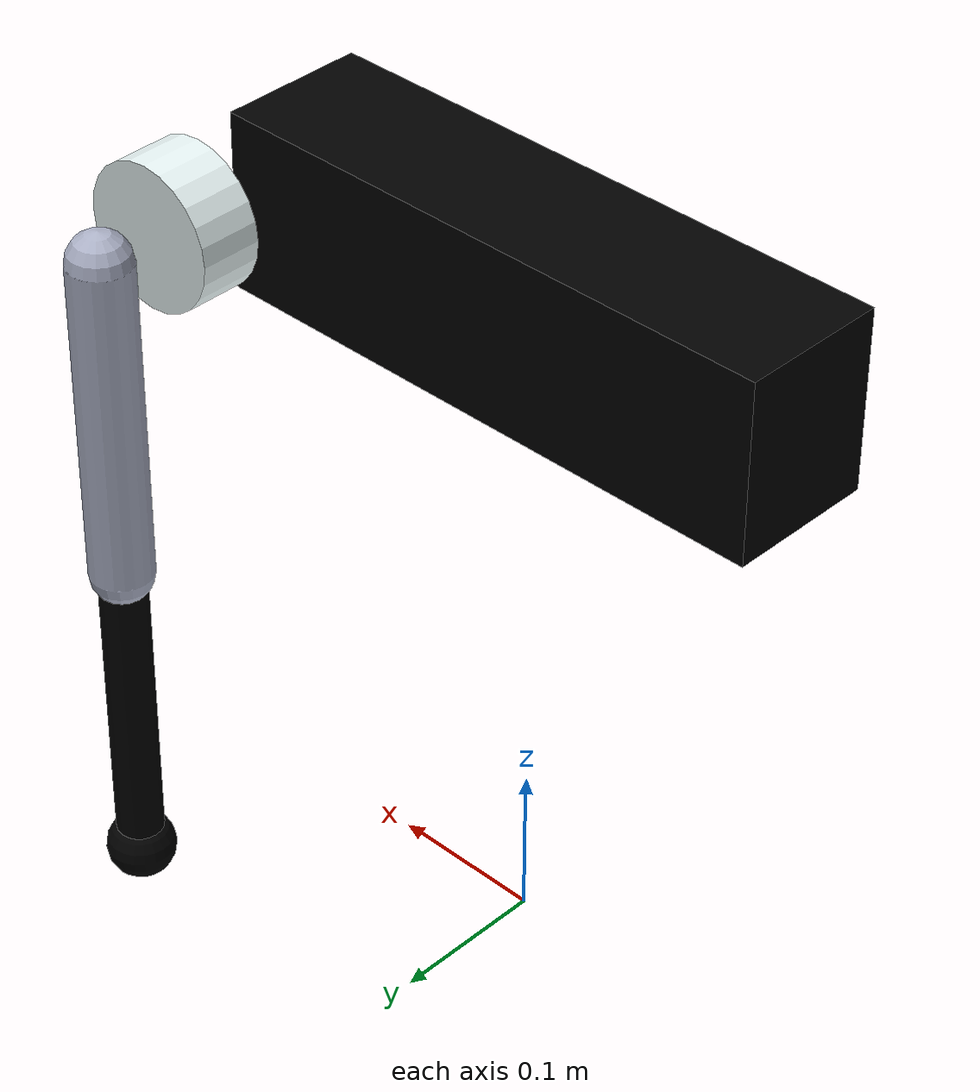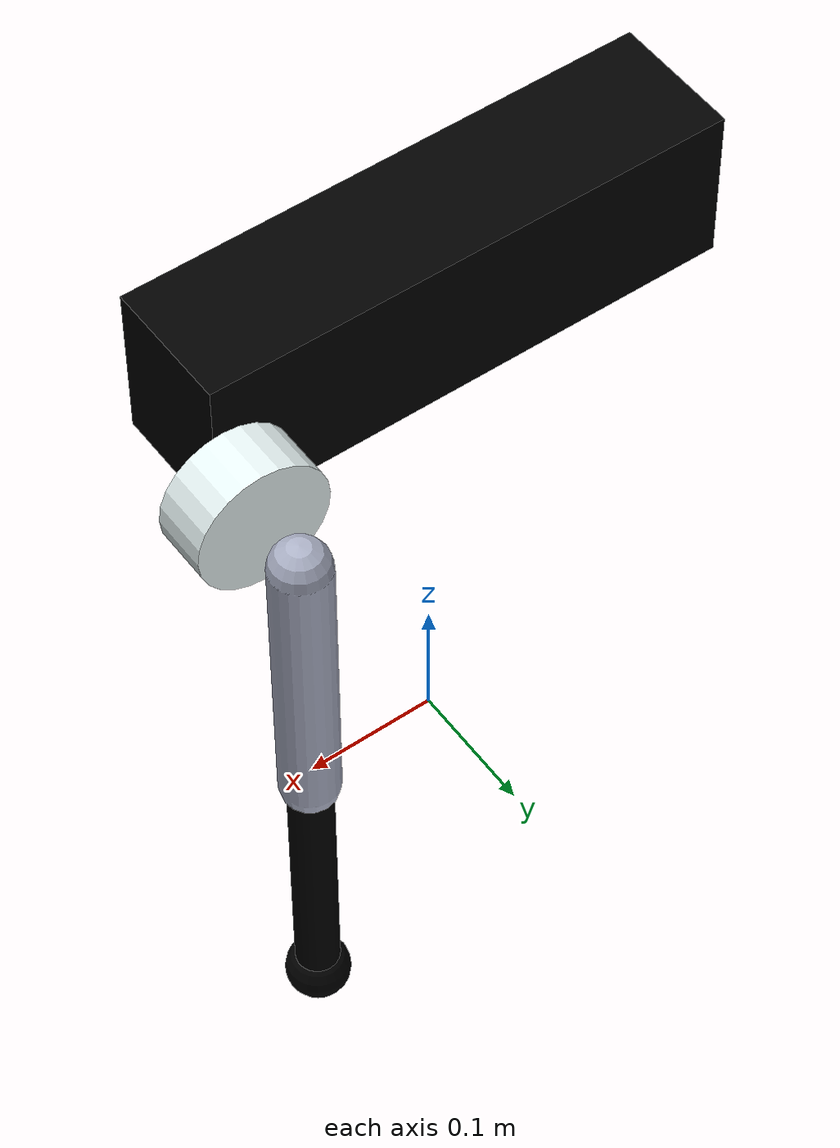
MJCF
<?xml version="1.0" encoding="UTF-8"?>
<mujoco model="go2">
  <compiler angle="radian"/>
  <option cone="elliptic" impratio="100"/>

  <default>
    <default class="go2">
      <geom friction="0.4" margin="0.001" condim="1"/>
      <joint axis="0 1 0" damping="0.1" armature="0.01" frictionloss="0.2"/>
      <motor ctrlrange="-23.7 23.7"/>
      <default class="abduction">
        <joint axis="1 0 0" range="-1.0472 1.0472"/>
      </default>
      <default class="hip">
        <default class="front_hip">
          <joint range="-1.5708 3.4907"/>
        </default>
        <default class="back_hip">
          <joint range="-0.5236 4.5379"/>
        </default>
      </default>
      <default class="knee">
        <joint range="-2.7227 -0.83776"/>
        <motor ctrlrange="-45.43 45.43"/>
      </default>
    </default>
  </default>

  <asset>
    <material name="metal" rgba=".9 .95 .95 1"/>
    <material name="black" rgba="0 0 0 1"/>
    <material name="white" rgba="1 1 1 1"/>
    <material name="gray" rgba="0.671705 0.692426 0.774270 1"/>
  </asset>

  <worldbody>
    <body name="base_link" pos="0 0 0.445" childclass="go2">
      <inertial pos="0.021112 0 -0.005366" quat="-0.000543471 0.713435 -0.00173769 0.700719"
        mass="6.921" diaginertia="0.107027 0.0980771 0.0244531"/>
      <freejoint/>
      <!-- Main body -->
      <geom type="box" size="0.1881 0.04675 0.057" material="black"/>
      <site name="imu" pos="-0.02557 0 0.04232"/>

      <!-- Front Left Leg -->
      <body name="FL_hip" pos="0.1934 0.0465 0">
        <joint name="FL_hip_joint" class="abduction"/>
        <geom type="cylinder" size="0.046 0.02" pos="0 0.04 0" quat="0.707 0.707 0 0" material="metal"/>
        <body name="FL_thigh" pos="0 0.0955 0">
          <joint name="FL_thigh_joint" class="front_hip"/>
          <geom type="capsule" size="0.02" fromto="0 0 0 0 0 -0.213" material="gray"/>
          <body name="FL_calf" pos="0 0 -0.213">
            <joint name="FL_calf_joint" class="knee"/>
            <geom type="capsule" size="0.015" fromto="0 0 0 0 0 -0.213" material="black"/>
            <geom name="FL_foot" type="sphere" size="0.022" pos="0 0 -0.213" material="black"/>
          </body>
        </body>
      </body>

      <!-- Other legs omitted for testing... -->
    </body>
  </worldbody>

  <actuator>
    <motor name="FL_hip" joint="FL_hip_joint"/>
    <motor name="FL_thigh" joint="FL_thigh_joint"/>
    <motor name="FL_calf" joint="FL_calf_joint"/>
  </actuator>
</mujoco>
